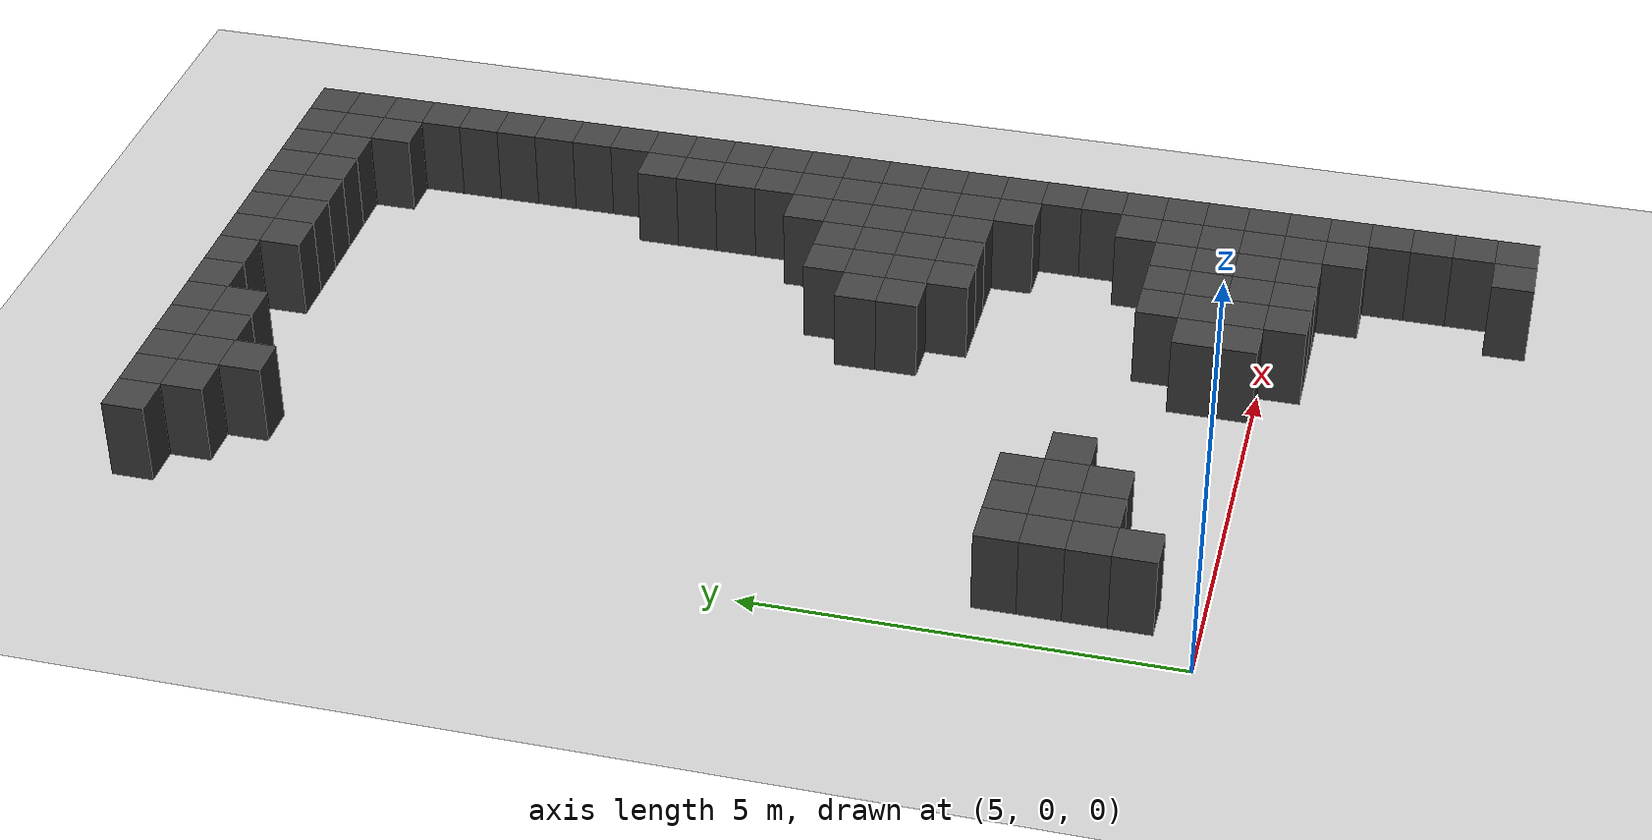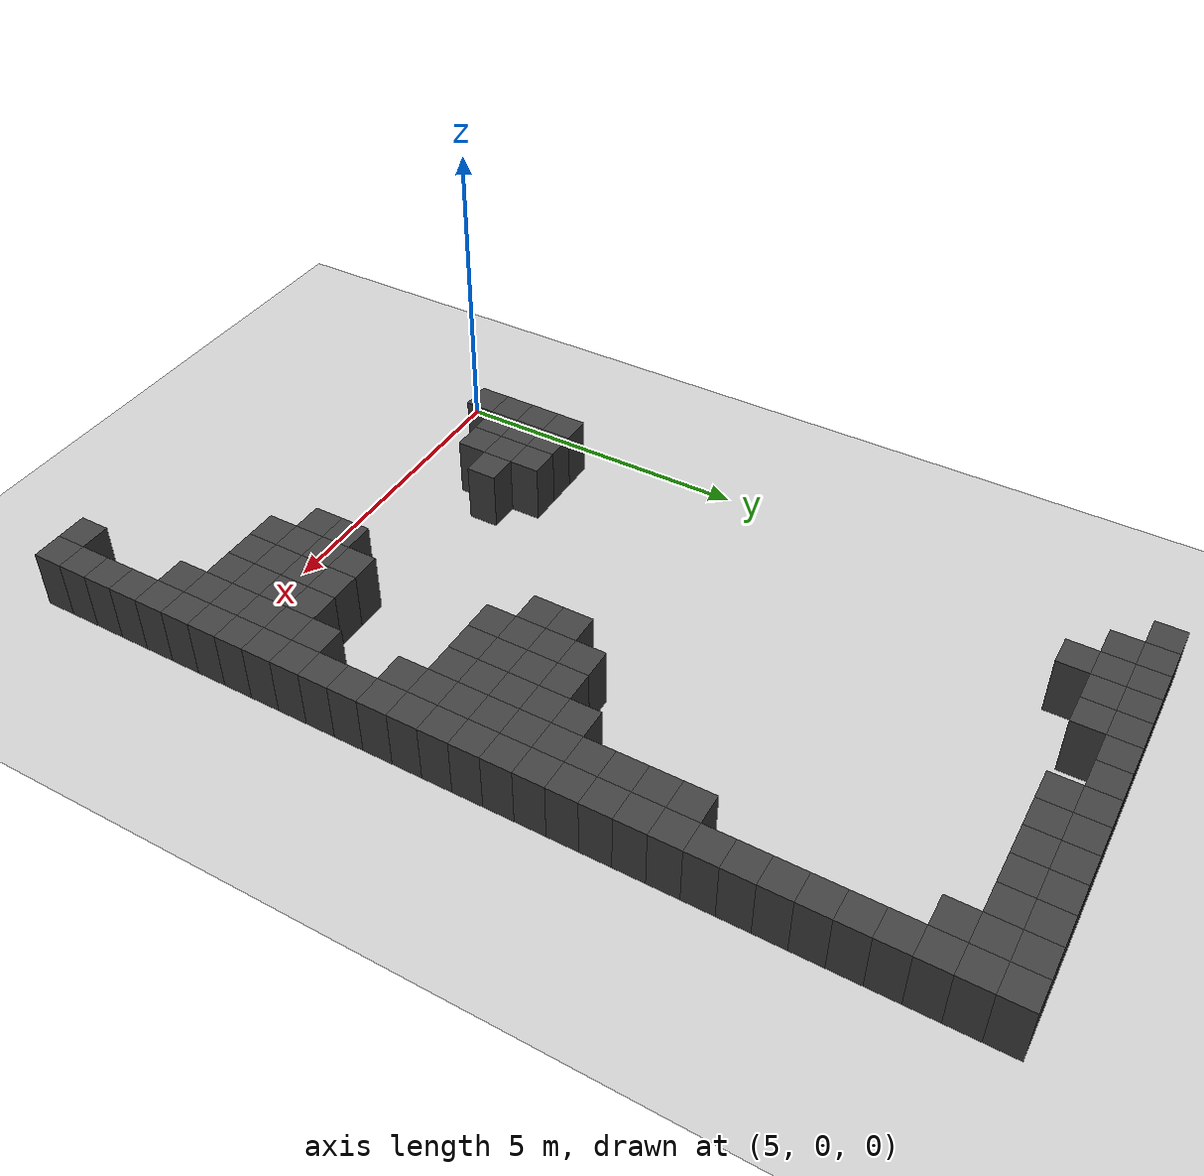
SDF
<sdf version="1.7">
 <world name="map_7219">
  <model name="ground_plane">
   <static>true</static>
   <link name="link">
    <collision name="collision">
     <geometry><plane><normal>0 0 1</normal><size>200 200</size></plane></geometry>
    </collision>
    <visual name="visual">
     <geometry><plane><normal>0 0 1</normal><size>200 200</size></plane></geometry>
     <material><ambient>0.8 0.8 0.8 1</ambient><diffuse>0.8 0.8 0.8 1</diffuse></material>
    </visual>
   </link>
  </model>
  <model name="maze_environment">
   <static>true</static>
   <link name="wall_36">
    <pose>5.750 12.250 0.500 0 0 0</pose>
    <collision name="col"><geometry><box><size>0.5 0.5 1.0</size></box></geometry></collision>
    <visual name="vis">
     <geometry><box><size>0.5 0.5 1.0</size></box></geometry>
     <material><ambient>0.15 0.15 0.15 1</ambient><diffuse>0.25 0.25 0.25 1</diffuse></material>
    </visual>
   </link>
   <link name="wall_37">
    <pose>6.250 12.250 0.500 0 0 0</pose>
    <collision name="col"><geometry><box><size>0.5 0.5 1.0</size></box></geometry></collision>
    <visual name="vis">
     <geometry><box><size>0.5 0.5 1.0</size></box></geometry>
     <material><ambient>0.15 0.15 0.15 1</ambient><diffuse>0.25 0.25 0.25 1</diffuse></material>
    </visual>
   </link>
   <link name="wall_38">
    <pose>6.750 12.250 0.500 0 0 0</pose>
    <collision name="col"><geometry><box><size>0.5 0.5 1.0</size></box></geometry></collision>
    <visual name="vis">
     <geometry><box><size>0.5 0.5 1.0</size></box></geometry>
     <material><ambient>0.15 0.15 0.15 1</ambient><diffuse>0.25 0.25 0.25 1</diffuse></material>
    </visual>
   </link>
   <link name="wall_39">
    <pose>7.250 12.250 0.500 0 0 0</pose>
    <collision name="col"><geometry><box><size>0.5 0.5 1.0</size></box></geometry></collision>
    <visual name="vis">
     <geometry><box><size>0.5 0.5 1.0</size></box></geometry>
     <material><ambient>0.15 0.15 0.15 1</ambient><diffuse>0.25 0.25 0.25 1</diffuse></material>
    </visual>
   </link>
   <link name="wall_40">
    <pose>7.750 12.250 0.500 0 0 0</pose>
    <collision name="col"><geometry><box><size>0.5 0.5 1.0</size></box></geometry></collision>
    <visual name="vis">
     <geometry><box><size>0.5 0.5 1.0</size></box></geometry>
     <material><ambient>0.15 0.15 0.15 1</ambient><diffuse>0.25 0.25 0.25 1</diffuse></material>
    </visual>
   </link>
   <link name="wall_41">
    <pose>8.250 12.250 0.500 0 0 0</pose>
    <collision name="col"><geometry><box><size>0.5 0.5 1.0</size></box></geometry></collision>
    <visual name="vis">
     <geometry><box><size>0.5 0.5 1.0</size></box></geometry>
     <material><ambient>0.15 0.15 0.15 1</ambient><diffuse>0.25 0.25 0.25 1</diffuse></material>
    </visual>
   </link>
   <link name="wall_42">
    <pose>8.750 12.250 0.500 0 0 0</pose>
    <collision name="col"><geometry><box><size>0.5 0.5 1.0</size></box></geometry></collision>
    <visual name="vis">
     <geometry><box><size>0.5 0.5 1.0</size></box></geometry>
     <material><ambient>0.15 0.15 0.15 1</ambient><diffuse>0.25 0.25 0.25 1</diffuse></material>
    </visual>
   </link>
   <link name="wall_43">
    <pose>9.250 12.250 0.500 0 0 0</pose>
    <collision name="col"><geometry><box><size>0.5 0.5 1.0</size></box></geometry></collision>
    <visual name="vis">
     <geometry><box><size>0.5 0.5 1.0</size></box></geometry>
     <material><ambient>0.15 0.15 0.15 1</ambient><diffuse>0.25 0.25 0.25 1</diffuse></material>
    </visual>
   </link>
   <link name="wall_44">
    <pose>9.750 12.250 0.500 0 0 0</pose>
    <collision name="col"><geometry><box><size>0.5 0.5 1.0</size></box></geometry></collision>
    <visual name="vis">
     <geometry><box><size>0.5 0.5 1.0</size></box></geometry>
     <material><ambient>0.15 0.15 0.15 1</ambient><diffuse>0.25 0.25 0.25 1</diffuse></material>
    </visual>
   </link>
   <link name="wall_45">
    <pose>10.250 12.250 0.500 0 0 0</pose>
    <collision name="col"><geometry><box><size>0.5 0.5 1.0</size></box></geometry></collision>
    <visual name="vis">
     <geometry><box><size>0.5 0.5 1.0</size></box></geometry>
     <material><ambient>0.15 0.15 0.15 1</ambient><diffuse>0.25 0.25 0.25 1</diffuse></material>
    </visual>
   </link>
   <link name="wall_46">
    <pose>10.750 12.250 0.500 0 0 0</pose>
    <collision name="col"><geometry><box><size>0.5 0.5 1.0</size></box></geometry></collision>
    <visual name="vis">
     <geometry><box><size>0.5 0.5 1.0</size></box></geometry>
     <material><ambient>0.15 0.15 0.15 1</ambient><diffuse>0.25 0.25 0.25 1</diffuse></material>
    </visual>
   </link>
   <link name="wall_47">
    <pose>11.250 12.250 0.500 0 0 0</pose>
    <collision name="col"><geometry><box><size>0.5 0.5 1.0</size></box></geometry></collision>
    <visual name="vis">
     <geometry><box><size>0.5 0.5 1.0</size></box></geometry>
     <material><ambient>0.15 0.15 0.15 1</ambient><diffuse>0.25 0.25 0.25 1</diffuse></material>
    </visual>
   </link>
   <link name="wall_48">
    <pose>11.750 12.250 0.500 0 0 0</pose>
    <collision name="col"><geometry><box><size>0.5 0.5 1.0</size></box></geometry></collision>
    <visual name="vis">
     <geometry><box><size>0.5 0.5 1.0</size></box></geometry>
     <material><ambient>0.15 0.15 0.15 1</ambient><diffuse>0.25 0.25 0.25 1</diffuse></material>
    </visual>
   </link>
   <link name="wall_49">
    <pose>12.250 12.250 0.500 0 0 0</pose>
    <collision name="col"><geometry><box><size>0.5 0.5 1.0</size></box></geometry></collision>
    <visual name="vis">
     <geometry><box><size>0.5 0.5 1.0</size></box></geometry>
     <material><ambient>0.15 0.15 0.15 1</ambient><diffuse>0.25 0.25 0.25 1</diffuse></material>
    </visual>
   </link>
   <link name="wall_59">
    <pose>6.250 11.750 0.500 0 0 0</pose>
    <collision name="col"><geometry><box><size>0.5 0.5 1.0</size></box></geometry></collision>
    <visual name="vis">
     <geometry><box><size>0.5 0.5 1.0</size></box></geometry>
     <material><ambient>0.15 0.15 0.15 1</ambient><diffuse>0.25 0.25 0.25 1</diffuse></material>
    </visual>
   </link>
   <link name="wall_60">
    <pose>6.750 11.750 0.500 0 0 0</pose>
    <collision name="col"><geometry><box><size>0.5 0.5 1.0</size></box></geometry></collision>
    <visual name="vis">
     <geometry><box><size>0.5 0.5 1.0</size></box></geometry>
     <material><ambient>0.15 0.15 0.15 1</ambient><diffuse>0.25 0.25 0.25 1</diffuse></material>
    </visual>
   </link>
   <link name="wall_61">
    <pose>7.250 11.750 0.500 0 0 0</pose>
    <collision name="col"><geometry><box><size>0.5 0.5 1.0</size></box></geometry></collision>
    <visual name="vis">
     <geometry><box><size>0.5 0.5 1.0</size></box></geometry>
     <material><ambient>0.15 0.15 0.15 1</ambient><diffuse>0.25 0.25 0.25 1</diffuse></material>
    </visual>
   </link>
   <link name="wall_62">
    <pose>7.750 11.750 0.500 0 0 0</pose>
    <collision name="col"><geometry><box><size>0.5 0.5 1.0</size></box></geometry></collision>
    <visual name="vis">
     <geometry><box><size>0.5 0.5 1.0</size></box></geometry>
     <material><ambient>0.15 0.15 0.15 1</ambient><diffuse>0.25 0.25 0.25 1</diffuse></material>
    </visual>
   </link>
   <link name="wall_63">
    <pose>9.250 11.750 0.500 0 0 0</pose>
    <collision name="col"><geometry><box><size>0.5 0.5 1.0</size></box></geometry></collision>
    <visual name="vis">
     <geometry><box><size>0.5 0.5 1.0</size></box></geometry>
     <material><ambient>0.15 0.15 0.15 1</ambient><diffuse>0.25 0.25 0.25 1</diffuse></material>
    </visual>
   </link>
   <link name="wall_64">
    <pose>9.750 11.750 0.500 0 0 0</pose>
    <collision name="col"><geometry><box><size>0.5 0.5 1.0</size></box></geometry></collision>
    <visual name="vis">
     <geometry><box><size>0.5 0.5 1.0</size></box></geometry>
     <material><ambient>0.15 0.15 0.15 1</ambient><diffuse>0.25 0.25 0.25 1</diffuse></material>
    </visual>
   </link>
   <link name="wall_65">
    <pose>10.250 11.750 0.500 0 0 0</pose>
    <collision name="col"><geometry><box><size>0.5 0.5 1.0</size></box></geometry></collision>
    <visual name="vis">
     <geometry><box><size>0.5 0.5 1.0</size></box></geometry>
     <material><ambient>0.15 0.15 0.15 1</ambient><diffuse>0.25 0.25 0.25 1</diffuse></material>
    </visual>
   </link>
   <link name="wall_66">
    <pose>10.750 11.750 0.500 0 0 0</pose>
    <collision name="col"><geometry><box><size>0.5 0.5 1.0</size></box></geometry></collision>
    <visual name="vis">
     <geometry><box><size>0.5 0.5 1.0</size></box></geometry>
     <material><ambient>0.15 0.15 0.15 1</ambient><diffuse>0.25 0.25 0.25 1</diffuse></material>
    </visual>
   </link>
   <link name="wall_67">
    <pose>11.250 11.750 0.500 0 0 0</pose>
    <collision name="col"><geometry><box><size>0.5 0.5 1.0</size></box></geometry></collision>
    <visual name="vis">
     <geometry><box><size>0.5 0.5 1.0</size></box></geometry>
     <material><ambient>0.15 0.15 0.15 1</ambient><diffuse>0.25 0.25 0.25 1</diffuse></material>
    </visual>
   </link>
   <link name="wall_68">
    <pose>11.750 11.750 0.500 0 0 0</pose>
    <collision name="col"><geometry><box><size>0.5 0.5 1.0</size></box></geometry></collision>
    <visual name="vis">
     <geometry><box><size>0.5 0.5 1.0</size></box></geometry>
     <material><ambient>0.15 0.15 0.15 1</ambient><diffuse>0.25 0.25 0.25 1</diffuse></material>
    </visual>
   </link>
   <link name="wall_69">
    <pose>12.250 11.750 0.500 0 0 0</pose>
    <collision name="col"><geometry><box><size>0.5 0.5 1.0</size></box></geometry></collision>
    <visual name="vis">
     <geometry><box><size>0.5 0.5 1.0</size></box></geometry>
     <material><ambient>0.15 0.15 0.15 1</ambient><diffuse>0.25 0.25 0.25 1</diffuse></material>
    </visual>
   </link>
   <link name="wall_73">
    <pose>6.750 11.250 0.500 0 0 0</pose>
    <collision name="col"><geometry><box><size>0.5 0.5 1.0</size></box></geometry></collision>
    <visual name="vis">
     <geometry><box><size>0.5 0.5 1.0</size></box></geometry>
     <material><ambient>0.15 0.15 0.15 1</ambient><diffuse>0.25 0.25 0.25 1</diffuse></material>
    </visual>
   </link>
   <link name="wall_74">
    <pose>11.750 11.250 0.500 0 0 0</pose>
    <collision name="col"><geometry><box><size>0.5 0.5 1.0</size></box></geometry></collision>
    <visual name="vis">
     <geometry><box><size>0.5 0.5 1.0</size></box></geometry>
     <material><ambient>0.15 0.15 0.15 1</ambient><diffuse>0.25 0.25 0.25 1</diffuse></material>
    </visual>
   </link>
   <link name="wall_75">
    <pose>12.250 11.250 0.500 0 0 0</pose>
    <collision name="col"><geometry><box><size>0.5 0.5 1.0</size></box></geometry></collision>
    <visual name="vis">
     <geometry><box><size>0.5 0.5 1.0</size></box></geometry>
     <material><ambient>0.15 0.15 0.15 1</ambient><diffuse>0.25 0.25 0.25 1</diffuse></material>
    </visual>
   </link>
   <link name="wall_77">
    <pose>12.250 10.750 0.500 0 0 0</pose>
    <collision name="col"><geometry><box><size>0.5 0.5 1.0</size></box></geometry></collision>
    <visual name="vis">
     <geometry><box><size>0.5 0.5 1.0</size></box></geometry>
     <material><ambient>0.15 0.15 0.15 1</ambient><diffuse>0.25 0.25 0.25 1</diffuse></material>
    </visual>
   </link>
   <link name="wall_80">
    <pose>12.250 10.250 0.500 0 0 0</pose>
    <collision name="col"><geometry><box><size>0.5 0.5 1.0</size></box></geometry></collision>
    <visual name="vis">
     <geometry><box><size>0.5 0.5 1.0</size></box></geometry>
     <material><ambient>0.15 0.15 0.15 1</ambient><diffuse>0.25 0.25 0.25 1</diffuse></material>
    </visual>
   </link>
   <link name="wall_86">
    <pose>12.250 9.750 0.500 0 0 0</pose>
    <collision name="col"><geometry><box><size>0.5 0.5 1.0</size></box></geometry></collision>
    <visual name="vis">
     <geometry><box><size>0.5 0.5 1.0</size></box></geometry>
     <material><ambient>0.15 0.15 0.15 1</ambient><diffuse>0.25 0.25 0.25 1</diffuse></material>
    </visual>
   </link>
   <link name="wall_95">
    <pose>12.250 9.250 0.500 0 0 0</pose>
    <collision name="col"><geometry><box><size>0.5 0.5 1.0</size></box></geometry></collision>
    <visual name="vis">
     <geometry><box><size>0.5 0.5 1.0</size></box></geometry>
     <material><ambient>0.15 0.15 0.15 1</ambient><diffuse>0.25 0.25 0.25 1</diffuse></material>
    </visual>
   </link>
   <link name="wall_106">
    <pose>12.250 8.750 0.500 0 0 0</pose>
    <collision name="col"><geometry><box><size>0.5 0.5 1.0</size></box></geometry></collision>
    <visual name="vis">
     <geometry><box><size>0.5 0.5 1.0</size></box></geometry>
     <material><ambient>0.15 0.15 0.15 1</ambient><diffuse>0.25 0.25 0.25 1</diffuse></material>
    </visual>
   </link>
   <link name="wall_118">
    <pose>12.250 8.250 0.500 0 0 0</pose>
    <collision name="col"><geometry><box><size>0.5 0.5 1.0</size></box></geometry></collision>
    <visual name="vis">
     <geometry><box><size>0.5 0.5 1.0</size></box></geometry>
     <material><ambient>0.15 0.15 0.15 1</ambient><diffuse>0.25 0.25 0.25 1</diffuse></material>
    </visual>
   </link>
   <link name="wall_128">
    <pose>11.750 7.750 0.500 0 0 0</pose>
    <collision name="col"><geometry><box><size>0.5 0.5 1.0</size></box></geometry></collision>
    <visual name="vis">
     <geometry><box><size>0.5 0.5 1.0</size></box></geometry>
     <material><ambient>0.15 0.15 0.15 1</ambient><diffuse>0.25 0.25 0.25 1</diffuse></material>
    </visual>
   </link>
   <link name="wall_129">
    <pose>12.250 7.750 0.500 0 0 0</pose>
    <collision name="col"><geometry><box><size>0.5 0.5 1.0</size></box></geometry></collision>
    <visual name="vis">
     <geometry><box><size>0.5 0.5 1.0</size></box></geometry>
     <material><ambient>0.15 0.15 0.15 1</ambient><diffuse>0.25 0.25 0.25 1</diffuse></material>
    </visual>
   </link>
   <link name="wall_140">
    <pose>11.750 7.250 0.500 0 0 0</pose>
    <collision name="col"><geometry><box><size>0.5 0.5 1.0</size></box></geometry></collision>
    <visual name="vis">
     <geometry><box><size>0.5 0.5 1.0</size></box></geometry>
     <material><ambient>0.15 0.15 0.15 1</ambient><diffuse>0.25 0.25 0.25 1</diffuse></material>
    </visual>
   </link>
   <link name="wall_141">
    <pose>12.250 7.250 0.500 0 0 0</pose>
    <collision name="col"><geometry><box><size>0.5 0.5 1.0</size></box></geometry></collision>
    <visual name="vis">
     <geometry><box><size>0.5 0.5 1.0</size></box></geometry>
     <material><ambient>0.15 0.15 0.15 1</ambient><diffuse>0.25 0.25 0.25 1</diffuse></material>
    </visual>
   </link>
   <link name="wall_151">
    <pose>11.750 6.750 0.500 0 0 0</pose>
    <collision name="col"><geometry><box><size>0.5 0.5 1.0</size></box></geometry></collision>
    <visual name="vis">
     <geometry><box><size>0.5 0.5 1.0</size></box></geometry>
     <material><ambient>0.15 0.15 0.15 1</ambient><diffuse>0.25 0.25 0.25 1</diffuse></material>
    </visual>
   </link>
   <link name="wall_152">
    <pose>12.250 6.750 0.500 0 0 0</pose>
    <collision name="col"><geometry><box><size>0.5 0.5 1.0</size></box></geometry></collision>
    <visual name="vis">
     <geometry><box><size>0.5 0.5 1.0</size></box></geometry>
     <material><ambient>0.15 0.15 0.15 1</ambient><diffuse>0.25 0.25 0.25 1</diffuse></material>
    </visual>
   </link>
   <link name="wall_164">
    <pose>11.750 6.250 0.500 0 0 0</pose>
    <collision name="col"><geometry><box><size>0.5 0.5 1.0</size></box></geometry></collision>
    <visual name="vis">
     <geometry><box><size>0.5 0.5 1.0</size></box></geometry>
     <material><ambient>0.15 0.15 0.15 1</ambient><diffuse>0.25 0.25 0.25 1</diffuse></material>
    </visual>
   </link>
   <link name="wall_165">
    <pose>12.250 6.250 0.500 0 0 0</pose>
    <collision name="col"><geometry><box><size>0.5 0.5 1.0</size></box></geometry></collision>
    <visual name="vis">
     <geometry><box><size>0.5 0.5 1.0</size></box></geometry>
     <material><ambient>0.15 0.15 0.15 1</ambient><diffuse>0.25 0.25 0.25 1</diffuse></material>
    </visual>
   </link>
   <link name="wall_178">
    <pose>11.250 5.750 0.500 0 0 0</pose>
    <collision name="col"><geometry><box><size>0.5 0.5 1.0</size></box></geometry></collision>
    <visual name="vis">
     <geometry><box><size>0.5 0.5 1.0</size></box></geometry>
     <material><ambient>0.15 0.15 0.15 1</ambient><diffuse>0.25 0.25 0.25 1</diffuse></material>
    </visual>
   </link>
   <link name="wall_179">
    <pose>11.750 5.750 0.500 0 0 0</pose>
    <collision name="col"><geometry><box><size>0.5 0.5 1.0</size></box></geometry></collision>
    <visual name="vis">
     <geometry><box><size>0.5 0.5 1.0</size></box></geometry>
     <material><ambient>0.15 0.15 0.15 1</ambient><diffuse>0.25 0.25 0.25 1</diffuse></material>
    </visual>
   </link>
   <link name="wall_180">
    <pose>12.250 5.750 0.500 0 0 0</pose>
    <collision name="col"><geometry><box><size>0.5 0.5 1.0</size></box></geometry></collision>
    <visual name="vis">
     <geometry><box><size>0.5 0.5 1.0</size></box></geometry>
     <material><ambient>0.15 0.15 0.15 1</ambient><diffuse>0.25 0.25 0.25 1</diffuse></material>
    </visual>
   </link>
   <link name="wall_193">
    <pose>10.250 5.250 0.500 0 0 0</pose>
    <collision name="col"><geometry><box><size>0.5 0.5 1.0</size></box></geometry></collision>
    <visual name="vis">
     <geometry><box><size>0.5 0.5 1.0</size></box></geometry>
     <material><ambient>0.15 0.15 0.15 1</ambient><diffuse>0.25 0.25 0.25 1</diffuse></material>
    </visual>
   </link>
   <link name="wall_194">
    <pose>10.750 5.250 0.500 0 0 0</pose>
    <collision name="col"><geometry><box><size>0.5 0.5 1.0</size></box></geometry></collision>
    <visual name="vis">
     <geometry><box><size>0.5 0.5 1.0</size></box></geometry>
     <material><ambient>0.15 0.15 0.15 1</ambient><diffuse>0.25 0.25 0.25 1</diffuse></material>
    </visual>
   </link>
   <link name="wall_195">
    <pose>11.250 5.250 0.500 0 0 0</pose>
    <collision name="col"><geometry><box><size>0.5 0.5 1.0</size></box></geometry></collision>
    <visual name="vis">
     <geometry><box><size>0.5 0.5 1.0</size></box></geometry>
     <material><ambient>0.15 0.15 0.15 1</ambient><diffuse>0.25 0.25 0.25 1</diffuse></material>
    </visual>
   </link>
   <link name="wall_196">
    <pose>11.750 5.250 0.500 0 0 0</pose>
    <collision name="col"><geometry><box><size>0.5 0.5 1.0</size></box></geometry></collision>
    <visual name="vis">
     <geometry><box><size>0.5 0.5 1.0</size></box></geometry>
     <material><ambient>0.15 0.15 0.15 1</ambient><diffuse>0.25 0.25 0.25 1</diffuse></material>
    </visual>
   </link>
   <link name="wall_197">
    <pose>12.250 5.250 0.500 0 0 0</pose>
    <collision name="col"><geometry><box><size>0.5 0.5 1.0</size></box></geometry></collision>
    <visual name="vis">
     <geometry><box><size>0.5 0.5 1.0</size></box></geometry>
     <material><ambient>0.15 0.15 0.15 1</ambient><diffuse>0.25 0.25 0.25 1</diffuse></material>
    </visual>
   </link>
   <link name="wall_210">
    <pose>9.750 4.750 0.500 0 0 0</pose>
    <collision name="col"><geometry><box><size>0.5 0.5 1.0</size></box></geometry></collision>
    <visual name="vis">
     <geometry><box><size>0.5 0.5 1.0</size></box></geometry>
     <material><ambient>0.15 0.15 0.15 1</ambient><diffuse>0.25 0.25 0.25 1</diffuse></material>
    </visual>
   </link>
   <link name="wall_211">
    <pose>10.250 4.750 0.500 0 0 0</pose>
    <collision name="col"><geometry><box><size>0.5 0.5 1.0</size></box></geometry></collision>
    <visual name="vis">
     <geometry><box><size>0.5 0.5 1.0</size></box></geometry>
     <material><ambient>0.15 0.15 0.15 1</ambient><diffuse>0.25 0.25 0.25 1</diffuse></material>
    </visual>
   </link>
   <link name="wall_212">
    <pose>10.750 4.750 0.500 0 0 0</pose>
    <collision name="col"><geometry><box><size>0.5 0.5 1.0</size></box></geometry></collision>
    <visual name="vis">
     <geometry><box><size>0.5 0.5 1.0</size></box></geometry>
     <material><ambient>0.15 0.15 0.15 1</ambient><diffuse>0.25 0.25 0.25 1</diffuse></material>
    </visual>
   </link>
   <link name="wall_213">
    <pose>11.250 4.750 0.500 0 0 0</pose>
    <collision name="col"><geometry><box><size>0.5 0.5 1.0</size></box></geometry></collision>
    <visual name="vis">
     <geometry><box><size>0.5 0.5 1.0</size></box></geometry>
     <material><ambient>0.15 0.15 0.15 1</ambient><diffuse>0.25 0.25 0.25 1</diffuse></material>
    </visual>
   </link>
   <link name="wall_214">
    <pose>11.750 4.750 0.500 0 0 0</pose>
    <collision name="col"><geometry><box><size>0.5 0.5 1.0</size></box></geometry></collision>
    <visual name="vis">
     <geometry><box><size>0.5 0.5 1.0</size></box></geometry>
     <material><ambient>0.15 0.15 0.15 1</ambient><diffuse>0.25 0.25 0.25 1</diffuse></material>
    </visual>
   </link>
   <link name="wall_215">
    <pose>12.250 4.750 0.500 0 0 0</pose>
    <collision name="col"><geometry><box><size>0.5 0.5 1.0</size></box></geometry></collision>
    <visual name="vis">
     <geometry><box><size>0.5 0.5 1.0</size></box></geometry>
     <material><ambient>0.15 0.15 0.15 1</ambient><diffuse>0.25 0.25 0.25 1</diffuse></material>
    </visual>
   </link>
   <link name="wall_229">
    <pose>9.750 4.250 0.500 0 0 0</pose>
    <collision name="col"><geometry><box><size>0.5 0.5 1.0</size></box></geometry></collision>
    <visual name="vis">
     <geometry><box><size>0.5 0.5 1.0</size></box></geometry>
     <material><ambient>0.15 0.15 0.15 1</ambient><diffuse>0.25 0.25 0.25 1</diffuse></material>
    </visual>
   </link>
   <link name="wall_230">
    <pose>10.250 4.250 0.500 0 0 0</pose>
    <collision name="col"><geometry><box><size>0.5 0.5 1.0</size></box></geometry></collision>
    <visual name="vis">
     <geometry><box><size>0.5 0.5 1.0</size></box></geometry>
     <material><ambient>0.15 0.15 0.15 1</ambient><diffuse>0.25 0.25 0.25 1</diffuse></material>
    </visual>
   </link>
   <link name="wall_231">
    <pose>10.750 4.250 0.500 0 0 0</pose>
    <collision name="col"><geometry><box><size>0.5 0.5 1.0</size></box></geometry></collision>
    <visual name="vis">
     <geometry><box><size>0.5 0.5 1.0</size></box></geometry>
     <material><ambient>0.15 0.15 0.15 1</ambient><diffuse>0.25 0.25 0.25 1</diffuse></material>
    </visual>
   </link>
   <link name="wall_232">
    <pose>11.250 4.250 0.500 0 0 0</pose>
    <collision name="col"><geometry><box><size>0.5 0.5 1.0</size></box></geometry></collision>
    <visual name="vis">
     <geometry><box><size>0.5 0.5 1.0</size></box></geometry>
     <material><ambient>0.15 0.15 0.15 1</ambient><diffuse>0.25 0.25 0.25 1</diffuse></material>
    </visual>
   </link>
   <link name="wall_233">
    <pose>11.750 4.250 0.500 0 0 0</pose>
    <collision name="col"><geometry><box><size>0.5 0.5 1.0</size></box></geometry></collision>
    <visual name="vis">
     <geometry><box><size>0.5 0.5 1.0</size></box></geometry>
     <material><ambient>0.15 0.15 0.15 1</ambient><diffuse>0.25 0.25 0.25 1</diffuse></material>
    </visual>
   </link>
   <link name="wall_234">
    <pose>12.250 4.250 0.500 0 0 0</pose>
    <collision name="col"><geometry><box><size>0.5 0.5 1.0</size></box></geometry></collision>
    <visual name="vis">
     <geometry><box><size>0.5 0.5 1.0</size></box></geometry>
     <material><ambient>0.15 0.15 0.15 1</ambient><diffuse>0.25 0.25 0.25 1</diffuse></material>
    </visual>
   </link>
   <link name="wall_248">
    <pose>10.250 3.750 0.500 0 0 0</pose>
    <collision name="col"><geometry><box><size>0.5 0.5 1.0</size></box></geometry></collision>
    <visual name="vis">
     <geometry><box><size>0.5 0.5 1.0</size></box></geometry>
     <material><ambient>0.15 0.15 0.15 1</ambient><diffuse>0.25 0.25 0.25 1</diffuse></material>
    </visual>
   </link>
   <link name="wall_249">
    <pose>10.750 3.750 0.500 0 0 0</pose>
    <collision name="col"><geometry><box><size>0.5 0.5 1.0</size></box></geometry></collision>
    <visual name="vis">
     <geometry><box><size>0.5 0.5 1.0</size></box></geometry>
     <material><ambient>0.15 0.15 0.15 1</ambient><diffuse>0.25 0.25 0.25 1</diffuse></material>
    </visual>
   </link>
   <link name="wall_250">
    <pose>11.250 3.750 0.500 0 0 0</pose>
    <collision name="col"><geometry><box><size>0.5 0.5 1.0</size></box></geometry></collision>
    <visual name="vis">
     <geometry><box><size>0.5 0.5 1.0</size></box></geometry>
     <material><ambient>0.15 0.15 0.15 1</ambient><diffuse>0.25 0.25 0.25 1</diffuse></material>
    </visual>
   </link>
   <link name="wall_251">
    <pose>11.750 3.750 0.500 0 0 0</pose>
    <collision name="col"><geometry><box><size>0.5 0.5 1.0</size></box></geometry></collision>
    <visual name="vis">
     <geometry><box><size>0.5 0.5 1.0</size></box></geometry>
     <material><ambient>0.15 0.15 0.15 1</ambient><diffuse>0.25 0.25 0.25 1</diffuse></material>
    </visual>
   </link>
   <link name="wall_252">
    <pose>12.250 3.750 0.500 0 0 0</pose>
    <collision name="col"><geometry><box><size>0.5 0.5 1.0</size></box></geometry></collision>
    <visual name="vis">
     <geometry><box><size>0.5 0.5 1.0</size></box></geometry>
     <material><ambient>0.15 0.15 0.15 1</ambient><diffuse>0.25 0.25 0.25 1</diffuse></material>
    </visual>
   </link>
   <link name="wall_267">
    <pose>11.750 3.250 0.500 0 0 0</pose>
    <collision name="col"><geometry><box><size>0.5 0.5 1.0</size></box></geometry></collision>
    <visual name="vis">
     <geometry><box><size>0.5 0.5 1.0</size></box></geometry>
     <material><ambient>0.15 0.15 0.15 1</ambient><diffuse>0.25 0.25 0.25 1</diffuse></material>
    </visual>
   </link>
   <link name="wall_268">
    <pose>12.250 3.250 0.500 0 0 0</pose>
    <collision name="col"><geometry><box><size>0.5 0.5 1.0</size></box></geometry></collision>
    <visual name="vis">
     <geometry><box><size>0.5 0.5 1.0</size></box></geometry>
     <material><ambient>0.15 0.15 0.15 1</ambient><diffuse>0.25 0.25 0.25 1</diffuse></material>
    </visual>
   </link>
   <link name="wall_283">
    <pose>12.250 2.750 0.500 0 0 0</pose>
    <collision name="col"><geometry><box><size>0.5 0.5 1.0</size></box></geometry></collision>
    <visual name="vis">
     <geometry><box><size>0.5 0.5 1.0</size></box></geometry>
     <material><ambient>0.15 0.15 0.15 1</ambient><diffuse>0.25 0.25 0.25 1</diffuse></material>
    </visual>
   </link>
   <link name="wall_296">
    <pose>5.750 2.250 0.500 0 0 0</pose>
    <collision name="col"><geometry><box><size>0.5 0.5 1.0</size></box></geometry></collision>
    <visual name="vis">
     <geometry><box><size>0.5 0.5 1.0</size></box></geometry>
     <material><ambient>0.15 0.15 0.15 1</ambient><diffuse>0.25 0.25 0.25 1</diffuse></material>
    </visual>
   </link>
   <link name="wall_297">
    <pose>6.250 2.250 0.500 0 0 0</pose>
    <collision name="col"><geometry><box><size>0.5 0.5 1.0</size></box></geometry></collision>
    <visual name="vis">
     <geometry><box><size>0.5 0.5 1.0</size></box></geometry>
     <material><ambient>0.15 0.15 0.15 1</ambient><diffuse>0.25 0.25 0.25 1</diffuse></material>
    </visual>
   </link>
   <link name="wall_298">
    <pose>6.750 2.250 0.500 0 0 0</pose>
    <collision name="col"><geometry><box><size>0.5 0.5 1.0</size></box></geometry></collision>
    <visual name="vis">
     <geometry><box><size>0.5 0.5 1.0</size></box></geometry>
     <material><ambient>0.15 0.15 0.15 1</ambient><diffuse>0.25 0.25 0.25 1</diffuse></material>
    </visual>
   </link>
   <link name="wall_299">
    <pose>12.250 2.250 0.500 0 0 0</pose>
    <collision name="col"><geometry><box><size>0.5 0.5 1.0</size></box></geometry></collision>
    <visual name="vis">
     <geometry><box><size>0.5 0.5 1.0</size></box></geometry>
     <material><ambient>0.15 0.15 0.15 1</ambient><diffuse>0.25 0.25 0.25 1</diffuse></material>
    </visual>
   </link>
   <link name="wall_312">
    <pose>5.750 1.750 0.500 0 0 0</pose>
    <collision name="col"><geometry><box><size>0.5 0.5 1.0</size></box></geometry></collision>
    <visual name="vis">
     <geometry><box><size>0.5 0.5 1.0</size></box></geometry>
     <material><ambient>0.15 0.15 0.15 1</ambient><diffuse>0.25 0.25 0.25 1</diffuse></material>
    </visual>
   </link>
   <link name="wall_313">
    <pose>6.250 1.750 0.500 0 0 0</pose>
    <collision name="col"><geometry><box><size>0.5 0.5 1.0</size></box></geometry></collision>
    <visual name="vis">
     <geometry><box><size>0.5 0.5 1.0</size></box></geometry>
     <material><ambient>0.15 0.15 0.15 1</ambient><diffuse>0.25 0.25 0.25 1</diffuse></material>
    </visual>
   </link>
   <link name="wall_314">
    <pose>6.750 1.750 0.500 0 0 0</pose>
    <collision name="col"><geometry><box><size>0.5 0.5 1.0</size></box></geometry></collision>
    <visual name="vis">
     <geometry><box><size>0.5 0.5 1.0</size></box></geometry>
     <material><ambient>0.15 0.15 0.15 1</ambient><diffuse>0.25 0.25 0.25 1</diffuse></material>
    </visual>
   </link>
   <link name="wall_315">
    <pose>7.250 1.750 0.500 0 0 0</pose>
    <collision name="col"><geometry><box><size>0.5 0.5 1.0</size></box></geometry></collision>
    <visual name="vis">
     <geometry><box><size>0.5 0.5 1.0</size></box></geometry>
     <material><ambient>0.15 0.15 0.15 1</ambient><diffuse>0.25 0.25 0.25 1</diffuse></material>
    </visual>
   </link>
   <link name="wall_316">
    <pose>11.750 1.750 0.500 0 0 0</pose>
    <collision name="col"><geometry><box><size>0.5 0.5 1.0</size></box></geometry></collision>
    <visual name="vis">
     <geometry><box><size>0.5 0.5 1.0</size></box></geometry>
     <material><ambient>0.15 0.15 0.15 1</ambient><diffuse>0.25 0.25 0.25 1</diffuse></material>
    </visual>
   </link>
   <link name="wall_317">
    <pose>12.250 1.750 0.500 0 0 0</pose>
    <collision name="col"><geometry><box><size>0.5 0.5 1.0</size></box></geometry></collision>
    <visual name="vis">
     <geometry><box><size>0.5 0.5 1.0</size></box></geometry>
     <material><ambient>0.15 0.15 0.15 1</ambient><diffuse>0.25 0.25 0.25 1</diffuse></material>
    </visual>
   </link>
   <link name="wall_332">
    <pose>5.750 1.250 0.500 0 0 0</pose>
    <collision name="col"><geometry><box><size>0.5 0.5 1.0</size></box></geometry></collision>
    <visual name="vis">
     <geometry><box><size>0.5 0.5 1.0</size></box></geometry>
     <material><ambient>0.15 0.15 0.15 1</ambient><diffuse>0.25 0.25 0.25 1</diffuse></material>
    </visual>
   </link>
   <link name="wall_333">
    <pose>6.250 1.250 0.500 0 0 0</pose>
    <collision name="col"><geometry><box><size>0.5 0.5 1.0</size></box></geometry></collision>
    <visual name="vis">
     <geometry><box><size>0.5 0.5 1.0</size></box></geometry>
     <material><ambient>0.15 0.15 0.15 1</ambient><diffuse>0.25 0.25 0.25 1</diffuse></material>
    </visual>
   </link>
   <link name="wall_334">
    <pose>6.750 1.250 0.500 0 0 0</pose>
    <collision name="col"><geometry><box><size>0.5 0.5 1.0</size></box></geometry></collision>
    <visual name="vis">
     <geometry><box><size>0.5 0.5 1.0</size></box></geometry>
     <material><ambient>0.15 0.15 0.15 1</ambient><diffuse>0.25 0.25 0.25 1</diffuse></material>
    </visual>
   </link>
   <link name="wall_335">
    <pose>10.250 1.250 0.500 0 0 0</pose>
    <collision name="col"><geometry><box><size>0.5 0.5 1.0</size></box></geometry></collision>
    <visual name="vis">
     <geometry><box><size>0.5 0.5 1.0</size></box></geometry>
     <material><ambient>0.15 0.15 0.15 1</ambient><diffuse>0.25 0.25 0.25 1</diffuse></material>
    </visual>
   </link>
   <link name="wall_336">
    <pose>10.750 1.250 0.500 0 0 0</pose>
    <collision name="col"><geometry><box><size>0.5 0.5 1.0</size></box></geometry></collision>
    <visual name="vis">
     <geometry><box><size>0.5 0.5 1.0</size></box></geometry>
     <material><ambient>0.15 0.15 0.15 1</ambient><diffuse>0.25 0.25 0.25 1</diffuse></material>
    </visual>
   </link>
   <link name="wall_337">
    <pose>11.250 1.250 0.500 0 0 0</pose>
    <collision name="col"><geometry><box><size>0.5 0.5 1.0</size></box></geometry></collision>
    <visual name="vis">
     <geometry><box><size>0.5 0.5 1.0</size></box></geometry>
     <material><ambient>0.15 0.15 0.15 1</ambient><diffuse>0.25 0.25 0.25 1</diffuse></material>
    </visual>
   </link>
   <link name="wall_338">
    <pose>11.750 1.250 0.500 0 0 0</pose>
    <collision name="col"><geometry><box><size>0.5 0.5 1.0</size></box></geometry></collision>
    <visual name="vis">
     <geometry><box><size>0.5 0.5 1.0</size></box></geometry>
     <material><ambient>0.15 0.15 0.15 1</ambient><diffuse>0.25 0.25 0.25 1</diffuse></material>
    </visual>
   </link>
   <link name="wall_339">
    <pose>12.250 1.250 0.500 0 0 0</pose>
    <collision name="col"><geometry><box><size>0.5 0.5 1.0</size></box></geometry></collision>
    <visual name="vis">
     <geometry><box><size>0.5 0.5 1.0</size></box></geometry>
     <material><ambient>0.15 0.15 0.15 1</ambient><diffuse>0.25 0.25 0.25 1</diffuse></material>
    </visual>
   </link>
   <link name="wall_357">
    <pose>5.750 0.750 0.500 0 0 0</pose>
    <collision name="col"><geometry><box><size>0.5 0.5 1.0</size></box></geometry></collision>
    <visual name="vis">
     <geometry><box><size>0.5 0.5 1.0</size></box></geometry>
     <material><ambient>0.15 0.15 0.15 1</ambient><diffuse>0.25 0.25 0.25 1</diffuse></material>
    </visual>
   </link>
   <link name="wall_358">
    <pose>9.750 0.750 0.500 0 0 0</pose>
    <collision name="col"><geometry><box><size>0.5 0.5 1.0</size></box></geometry></collision>
    <visual name="vis">
     <geometry><box><size>0.5 0.5 1.0</size></box></geometry>
     <material><ambient>0.15 0.15 0.15 1</ambient><diffuse>0.25 0.25 0.25 1</diffuse></material>
    </visual>
   </link>
   <link name="wall_359">
    <pose>10.250 0.750 0.500 0 0 0</pose>
    <collision name="col"><geometry><box><size>0.5 0.5 1.0</size></box></geometry></collision>
    <visual name="vis">
     <geometry><box><size>0.5 0.5 1.0</size></box></geometry>
     <material><ambient>0.15 0.15 0.15 1</ambient><diffuse>0.25 0.25 0.25 1</diffuse></material>
    </visual>
   </link>
   <link name="wall_360">
    <pose>10.750 0.750 0.500 0 0 0</pose>
    <collision name="col"><geometry><box><size>0.5 0.5 1.0</size></box></geometry></collision>
    <visual name="vis">
     <geometry><box><size>0.5 0.5 1.0</size></box></geometry>
     <material><ambient>0.15 0.15 0.15 1</ambient><diffuse>0.25 0.25 0.25 1</diffuse></material>
    </visual>
   </link>
   <link name="wall_361">
    <pose>11.250 0.750 0.500 0 0 0</pose>
    <collision name="col"><geometry><box><size>0.5 0.5 1.0</size></box></geometry></collision>
    <visual name="vis">
     <geometry><box><size>0.5 0.5 1.0</size></box></geometry>
     <material><ambient>0.15 0.15 0.15 1</ambient><diffuse>0.25 0.25 0.25 1</diffuse></material>
    </visual>
   </link>
   <link name="wall_362">
    <pose>11.750 0.750 0.500 0 0 0</pose>
    <collision name="col"><geometry><box><size>0.5 0.5 1.0</size></box></geometry></collision>
    <visual name="vis">
     <geometry><box><size>0.5 0.5 1.0</size></box></geometry>
     <material><ambient>0.15 0.15 0.15 1</ambient><diffuse>0.25 0.25 0.25 1</diffuse></material>
    </visual>
   </link>
   <link name="wall_363">
    <pose>12.250 0.750 0.500 0 0 0</pose>
    <collision name="col"><geometry><box><size>0.5 0.5 1.0</size></box></geometry></collision>
    <visual name="vis">
     <geometry><box><size>0.5 0.5 1.0</size></box></geometry>
     <material><ambient>0.15 0.15 0.15 1</ambient><diffuse>0.25 0.25 0.25 1</diffuse></material>
    </visual>
   </link>
   <link name="wall_380">
    <pose>9.750 0.250 0.500 0 0 0</pose>
    <collision name="col"><geometry><box><size>0.5 0.5 1.0</size></box></geometry></collision>
    <visual name="vis">
     <geometry><box><size>0.5 0.5 1.0</size></box></geometry>
     <material><ambient>0.15 0.15 0.15 1</ambient><diffuse>0.25 0.25 0.25 1</diffuse></material>
    </visual>
   </link>
   <link name="wall_381">
    <pose>10.250 0.250 0.500 0 0 0</pose>
    <collision name="col"><geometry><box><size>0.5 0.5 1.0</size></box></geometry></collision>
    <visual name="vis">
     <geometry><box><size>0.5 0.5 1.0</size></box></geometry>
     <material><ambient>0.15 0.15 0.15 1</ambient><diffuse>0.25 0.25 0.25 1</diffuse></material>
    </visual>
   </link>
   <link name="wall_382">
    <pose>10.750 0.250 0.500 0 0 0</pose>
    <collision name="col"><geometry><box><size>0.5 0.5 1.0</size></box></geometry></collision>
    <visual name="vis">
     <geometry><box><size>0.5 0.5 1.0</size></box></geometry>
     <material><ambient>0.15 0.15 0.15 1</ambient><diffuse>0.25 0.25 0.25 1</diffuse></material>
    </visual>
   </link>
   <link name="wall_383">
    <pose>11.250 0.250 0.500 0 0 0</pose>
    <collision name="col"><geometry><box><size>0.5 0.5 1.0</size></box></geometry></collision>
    <visual name="vis">
     <geometry><box><size>0.5 0.5 1.0</size></box></geometry>
     <material><ambient>0.15 0.15 0.15 1</ambient><diffuse>0.25 0.25 0.25 1</diffuse></material>
    </visual>
   </link>
   <link name="wall_384">
    <pose>11.750 0.250 0.500 0 0 0</pose>
    <collision name="col"><geometry><box><size>0.5 0.5 1.0</size></box></geometry></collision>
    <visual name="vis">
     <geometry><box><size>0.5 0.5 1.0</size></box></geometry>
     <material><ambient>0.15 0.15 0.15 1</ambient><diffuse>0.25 0.25 0.25 1</diffuse></material>
    </visual>
   </link>
   <link name="wall_385">
    <pose>12.250 0.250 0.500 0 0 0</pose>
    <collision name="col"><geometry><box><size>0.5 0.5 1.0</size></box></geometry></collision>
    <visual name="vis">
     <geometry><box><size>0.5 0.5 1.0</size></box></geometry>
     <material><ambient>0.15 0.15 0.15 1</ambient><diffuse>0.25 0.25 0.25 1</diffuse></material>
    </visual>
   </link>
   <link name="wall_394">
    <pose>10.250 -0.250 0.500 0 0 0</pose>
    <collision name="col"><geometry><box><size>0.5 0.5 1.0</size></box></geometry></collision>
    <visual name="vis">
     <geometry><box><size>0.5 0.5 1.0</size></box></geometry>
     <material><ambient>0.15 0.15 0.15 1</ambient><diffuse>0.25 0.25 0.25 1</diffuse></material>
    </visual>
   </link>
   <link name="wall_395">
    <pose>10.750 -0.250 0.500 0 0 0</pose>
    <collision name="col"><geometry><box><size>0.5 0.5 1.0</size></box></geometry></collision>
    <visual name="vis">
     <geometry><box><size>0.5 0.5 1.0</size></box></geometry>
     <material><ambient>0.15 0.15 0.15 1</ambient><diffuse>0.25 0.25 0.25 1</diffuse></material>
    </visual>
   </link>
   <link name="wall_396">
    <pose>11.250 -0.250 0.500 0 0 0</pose>
    <collision name="col"><geometry><box><size>0.5 0.5 1.0</size></box></geometry></collision>
    <visual name="vis">
     <geometry><box><size>0.5 0.5 1.0</size></box></geometry>
     <material><ambient>0.15 0.15 0.15 1</ambient><diffuse>0.25 0.25 0.25 1</diffuse></material>
    </visual>
   </link>
   <link name="wall_397">
    <pose>11.750 -0.250 0.500 0 0 0</pose>
    <collision name="col"><geometry><box><size>0.5 0.5 1.0</size></box></geometry></collision>
    <visual name="vis">
     <geometry><box><size>0.5 0.5 1.0</size></box></geometry>
     <material><ambient>0.15 0.15 0.15 1</ambient><diffuse>0.25 0.25 0.25 1</diffuse></material>
    </visual>
   </link>
   <link name="wall_398">
    <pose>12.250 -0.250 0.500 0 0 0</pose>
    <collision name="col"><geometry><box><size>0.5 0.5 1.0</size></box></geometry></collision>
    <visual name="vis">
     <geometry><box><size>0.5 0.5 1.0</size></box></geometry>
     <material><ambient>0.15 0.15 0.15 1</ambient><diffuse>0.25 0.25 0.25 1</diffuse></material>
    </visual>
   </link>
   <link name="wall_404">
    <pose>11.750 -0.750 0.500 0 0 0</pose>
    <collision name="col"><geometry><box><size>0.5 0.5 1.0</size></box></geometry></collision>
    <visual name="vis">
     <geometry><box><size>0.5 0.5 1.0</size></box></geometry>
     <material><ambient>0.15 0.15 0.15 1</ambient><diffuse>0.25 0.25 0.25 1</diffuse></material>
    </visual>
   </link>
   <link name="wall_405">
    <pose>12.250 -0.750 0.500 0 0 0</pose>
    <collision name="col"><geometry><box><size>0.5 0.5 1.0</size></box></geometry></collision>
    <visual name="vis">
     <geometry><box><size>0.5 0.5 1.0</size></box></geometry>
     <material><ambient>0.15 0.15 0.15 1</ambient><diffuse>0.25 0.25 0.25 1</diffuse></material>
    </visual>
   </link>
   <link name="wall_410">
    <pose>12.250 -1.250 0.500 0 0 0</pose>
    <collision name="col"><geometry><box><size>0.5 0.5 1.0</size></box></geometry></collision>
    <visual name="vis">
     <geometry><box><size>0.5 0.5 1.0</size></box></geometry>
     <material><ambient>0.15 0.15 0.15 1</ambient><diffuse>0.25 0.25 0.25 1</diffuse></material>
    </visual>
   </link>
   <link name="wall_419">
    <pose>12.250 -1.750 0.500 0 0 0</pose>
    <collision name="col"><geometry><box><size>0.5 0.5 1.0</size></box></geometry></collision>
    <visual name="vis">
     <geometry><box><size>0.5 0.5 1.0</size></box></geometry>
     <material><ambient>0.15 0.15 0.15 1</ambient><diffuse>0.25 0.25 0.25 1</diffuse></material>
    </visual>
   </link>
   <link name="wall_428">
    <pose>12.250 -2.250 0.500 0 0 0</pose>
    <collision name="col"><geometry><box><size>0.5 0.5 1.0</size></box></geometry></collision>
    <visual name="vis">
     <geometry><box><size>0.5 0.5 1.0</size></box></geometry>
     <material><ambient>0.15 0.15 0.15 1</ambient><diffuse>0.25 0.25 0.25 1</diffuse></material>
    </visual>
   </link>
   <link name="wall_437">
    <pose>11.750 -2.750 0.500 0 0 0</pose>
    <collision name="col"><geometry><box><size>0.5 0.5 1.0</size></box></geometry></collision>
    <visual name="vis">
     <geometry><box><size>0.5 0.5 1.0</size></box></geometry>
     <material><ambient>0.15 0.15 0.15 1</ambient><diffuse>0.25 0.25 0.25 1</diffuse></material>
    </visual>
   </link>
   <link name="wall_438">
    <pose>12.250 -2.750 0.500 0 0 0</pose>
    <collision name="col"><geometry><box><size>0.5 0.5 1.0</size></box></geometry></collision>
    <visual name="vis">
     <geometry><box><size>0.5 0.5 1.0</size></box></geometry>
     <material><ambient>0.15 0.15 0.15 1</ambient><diffuse>0.25 0.25 0.25 1</diffuse></material>
    </visual>
   </link>
  </model>
 </world>
</sdf>
